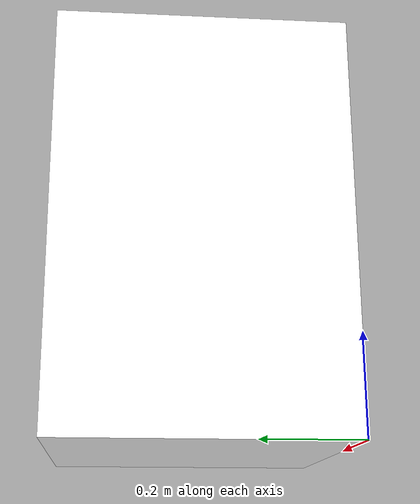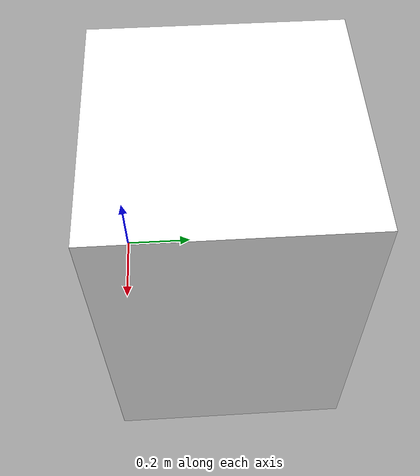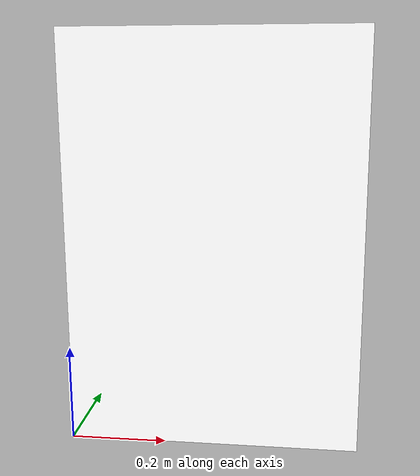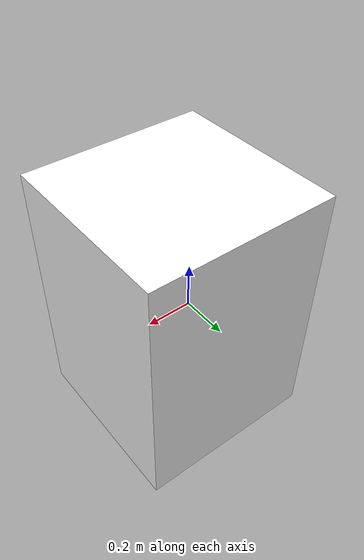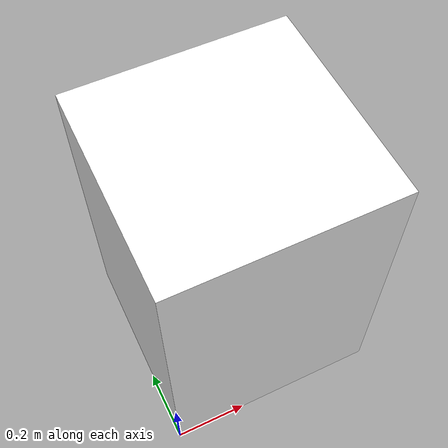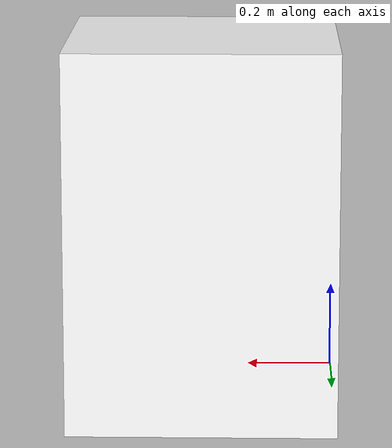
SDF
<?xml version='1.0'?>
<sdf version='1.7'>
  <model name='dryermachine'>
    <link name='link'>
      <pose>0 0 0 0 0 0</pose>
      <visual name='visual'>
        <geometry>
          <mesh>
            <uri>/root/workspace/self_gazebo_models/dryermachine/meshes/model.dae</uri>
          </mesh>
        </geometry>
        <material>
          <script>
	          <uri>/root/workspace/self_gazebo_models/dryermachine/materials/scripts</uri>
            <uri>/root/workspace/self_gazebo_models/dryermachine/materials/textures</uri>
            <name>Balcony/dryermachine</name>
          </script>
          <ambient>1 1 1 1</ambient>
        </material>
      </visual>
      <collision name='collision'>
        <geometry>
          <mesh>
            <uri>/root/workspace/self_gazebo_models/dryermachine/meshes/model.dae</uri>
            <scale>1 1 1</scale>
          </mesh>
        </geometry>
      </collision>
    </link>
    <static>1</static>
    <allow_auto_disable>1</allow_auto_disable>
  </model>
</sdf>
